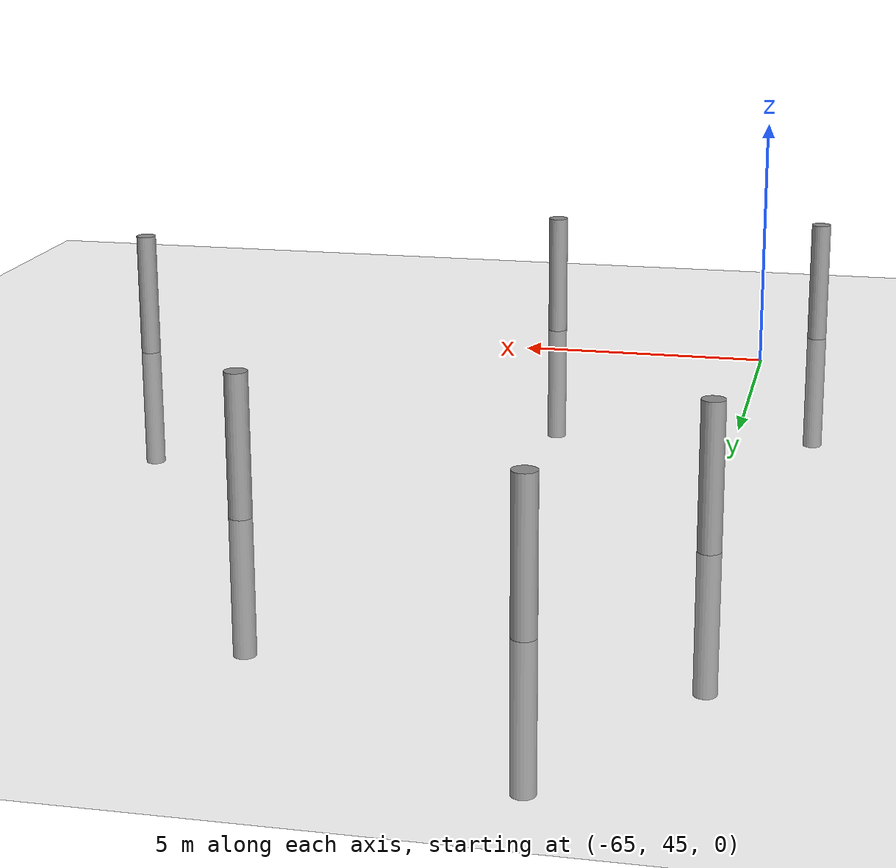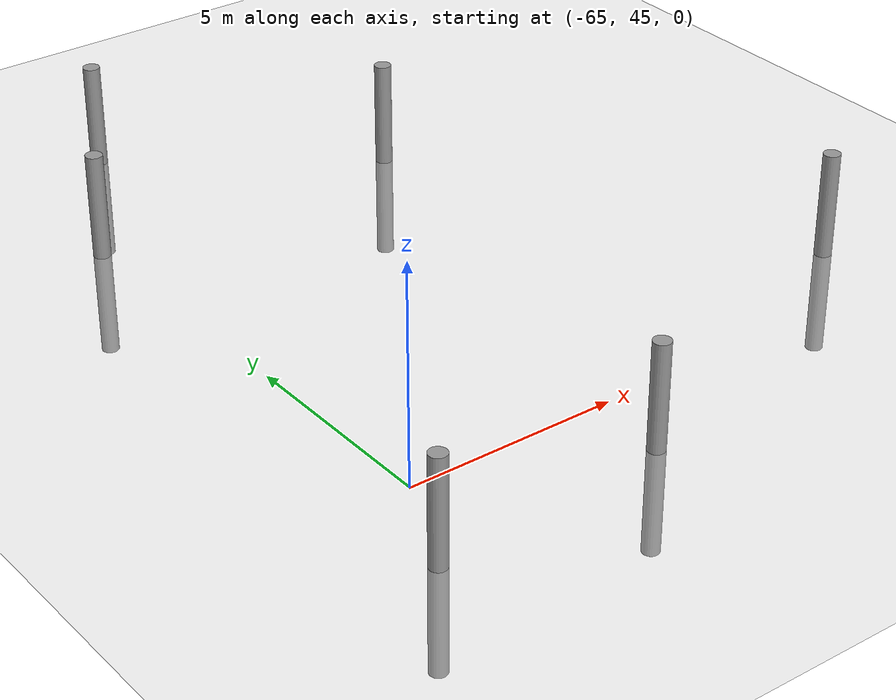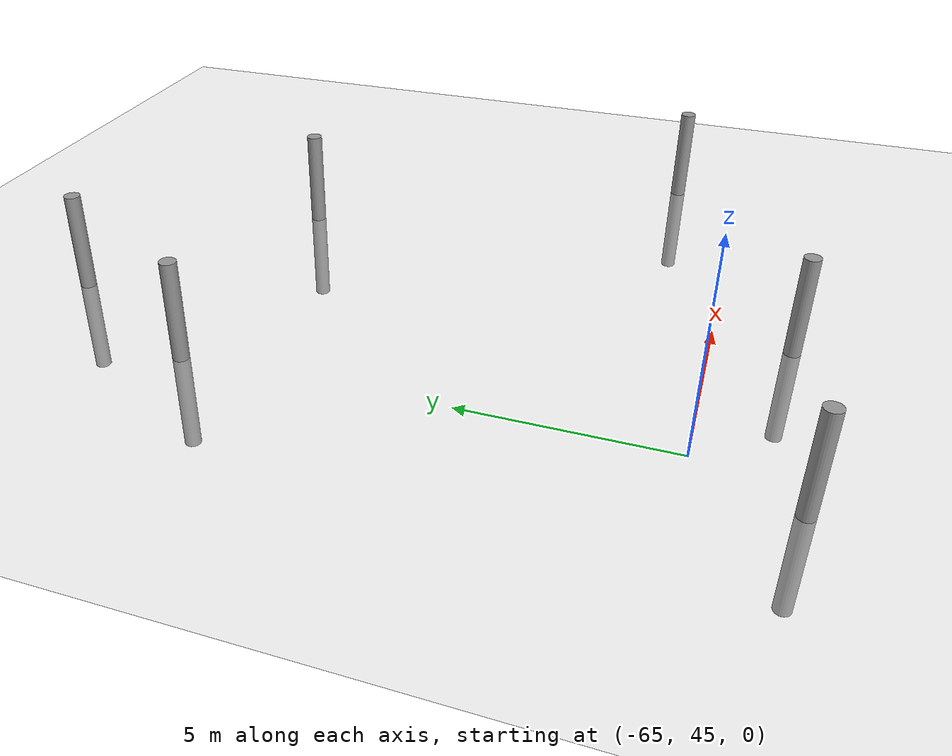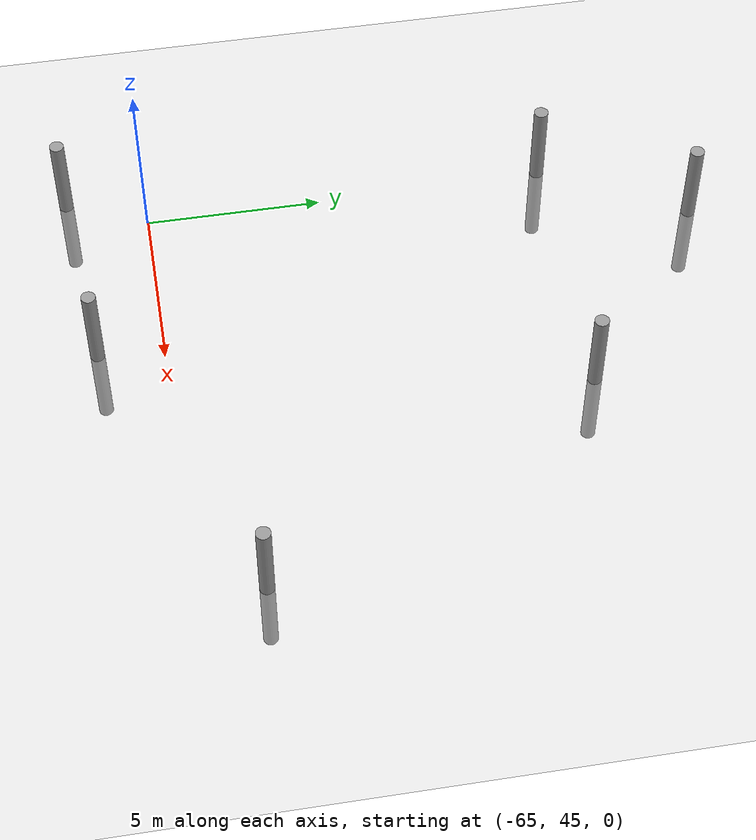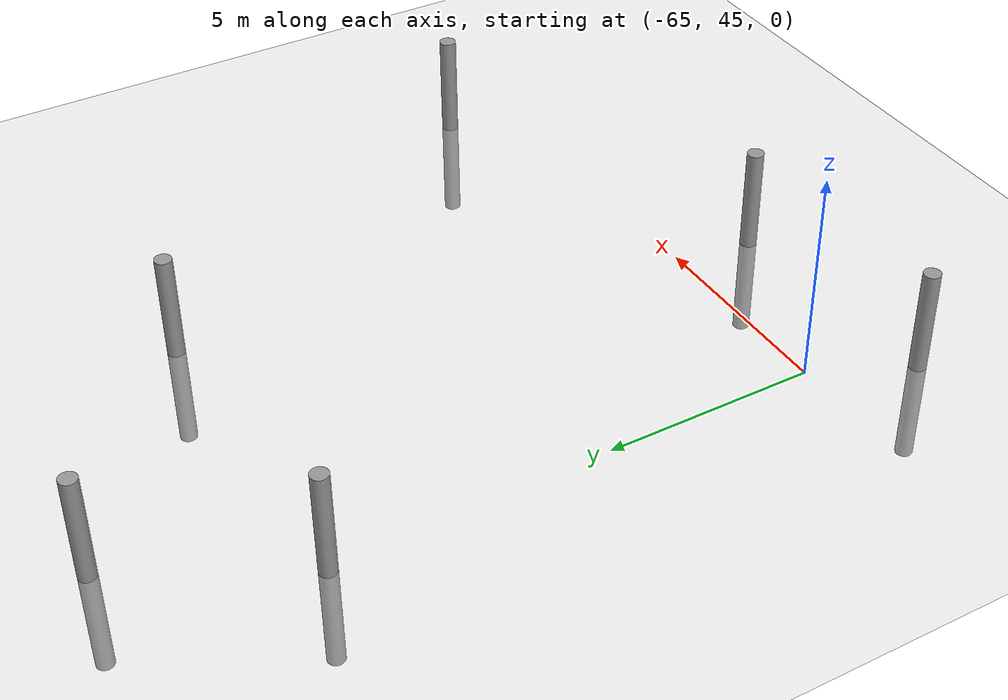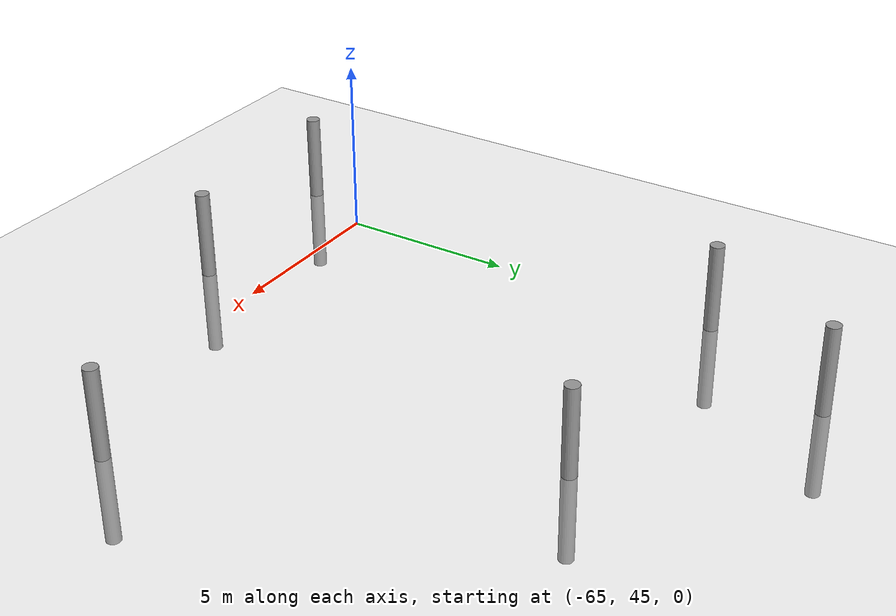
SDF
<sdf version="1.6">
 <world name="default">
  <model name="ground_plane">
   <static>1</static>
   <link name="link">
    <collision name="collision">
     <geometry><plane><normal>0 0 1</normal><size>100 100</size></plane></geometry>
     <surface><friction><ode><mu>100</mu><mu2>50</mu2></ode></friction></surface>
    </collision>
    <visual name="visual">
     <cast_shadows>0</cast_shadows>
     <geometry><plane><normal>0 0 1</normal><size>100 100</size></plane></geometry>
     <material>
      <script><uri>file://media/materials/scripts/gazebo.material</uri><name>Gazebo/Grey</name></script>
     </material>
    </visual>
   </link>
  </model>
  <model name="empty_pillars">
   <model name="empty_pillar_clone_10">
    <link name="link">
     <inertial>
      <mass>1</mass>
      <inertia><ixx>0.145833</ixx><ixy>0</ixy><ixz>0</ixz><iyy>0.145833</iyy><iyz>0</iyz><izz>0.125</izz></inertia>
     </inertial>
     <visual name="visual">
      <geometry><cylinder><radius>0.2</radius><length>5</length></cylinder></geometry>
      <material>
       <script><name>Gazebo/Grey</name><uri>file://media/materials/scripts/gazebo.material</uri></script>
       <shader type="vertex"><normal_map>__default__</normal_map></shader>
       <ambient>0.3 0.3 0.3 1</ambient>
       <diffuse>0.7 0.7 0.7 1</diffuse>
       <specular>0.01 0.01 0.01 1</specular>
       <emissive>0 0 0 1</emissive>
      </material>
     </visual>
     <collision name="collision">
      <geometry><cylinder><radius>0.05</radius><length>5</length></cylinder></geometry>
      <surface>
       <friction>
        <ode><mu>1</mu><mu2>1</mu2><fdir1>0 0 0</fdir1><slip1>0</slip1><slip2>0</slip2></ode>
        <torsional>
         <coefficient>1</coefficient>
         <patch_radius>0</patch_radius>
         <surface_radius>0</surface_radius>
         <use_patch_radius>1</use_patch_radius>
         <ode><slip>0</slip></ode>
        </torsional>
       </friction>
       <bounce><restitution_coefficient>0</restitution_coefficient><threshold>1e+06</threshold></bounce>
       <contact>
        <collide_without_contact>0</collide_without_contact>
        <collide_without_contact_bitmask>1</collide_without_contact_bitmask>
        <collide_bitmask>1</collide_bitmask>
        <ode>
         <soft_cfm>0</soft_cfm>
         <soft_erp>0.2</soft_erp>
         <kp>1e+13</kp>
         <kd>1</kd>
         <max_vel>0.01</max_vel>
         <min_depth>0</min_depth>
        </ode>
        <bullet>
         <split_impulse>1</split_impulse>
         <split_impulse_penetration_threshold>-0.01</split_impulse_penetration_threshold>
         <soft_cfm>0</soft_cfm>
         <soft_erp>0.2</soft_erp>
         <kp>1e+13</kp>
         <kd>1</kd>
        </bullet>
       </contact>
      </surface>
     </collision>
    </link>
    <static>0</static>
    <pose>13.5083 -16.8403 0 0 -0 0</pose>
   </model>
   <model name="empty_pillar_clone_34">
    <link name="link">
     <inertial>
      <mass>1</mass>
      <inertia><ixx>0.145833</ixx><ixy>0</ixy><ixz>0</ixz><iyy>0.145833</iyy><iyz>0</iyz><izz>0.125</izz></inertia>
     </inertial>
     <visual name="visual">
      <geometry><cylinder><radius>0.2</radius><length>5</length></cylinder></geometry>
      <material>
       <script><name>Gazebo/Grey</name><uri>file://media/materials/scripts/gazebo.material</uri></script>
       <shader type="vertex"><normal_map>__default__</normal_map></shader>
       <ambient>0.3 0.3 0.3 1</ambient>
       <diffuse>0.7 0.7 0.7 1</diffuse>
       <specular>0.01 0.01 0.01 1</specular>
       <emissive>0 0 0 1</emissive>
      </material>
     </visual>
     <collision name="collision">
      <geometry><cylinder><radius>0.05</radius><length>5</length></cylinder></geometry>
      <surface>
       <friction>
        <ode><mu>1</mu><mu2>1</mu2><fdir1>0 0 0</fdir1><slip1>0</slip1><slip2>0</slip2></ode>
        <torsional>
         <coefficient>1</coefficient>
         <patch_radius>0</patch_radius>
         <surface_radius>0</surface_radius>
         <use_patch_radius>1</use_patch_radius>
         <ode><slip>0</slip></ode>
        </torsional>
       </friction>
       <bounce><restitution_coefficient>0</restitution_coefficient><threshold>1e+06</threshold></bounce>
       <contact>
        <collide_without_contact>0</collide_without_contact>
        <collide_without_contact_bitmask>1</collide_without_contact_bitmask>
        <collide_bitmask>1</collide_bitmask>
        <ode>
         <soft_cfm>0</soft_cfm>
         <soft_erp>0.2</soft_erp>
         <kp>1e+13</kp>
         <kd>1</kd>
         <max_vel>0.01</max_vel>
         <min_depth>0</min_depth>
        </ode>
        <bullet>
         <split_impulse>1</split_impulse>
         <split_impulse_penetration_threshold>-0.01</split_impulse_penetration_threshold>
         <soft_cfm>0</soft_cfm>
         <soft_erp>0.2</soft_erp>
         <kp>1e+13</kp>
         <kd>1</kd>
        </bullet>
       </contact>
      </surface>
     </collision>
    </link>
    <static>0</static>
    <pose>19.0861 -20.8946 0 0 -0 0</pose>
   </model>
   <model name="empty_pillar_clone_52">
    <link name="link">
     <inertial>
      <mass>1</mass>
      <inertia><ixx>0.145833</ixx><ixy>0</ixy><ixz>0</ixz><iyy>0.145833</iyy><iyz>0</iyz><izz>0.125</izz></inertia>
     </inertial>
     <visual name="visual">
      <geometry><cylinder><radius>0.2</radius><length>5</length></cylinder></geometry>
      <material>
       <script><name>Gazebo/Grey</name><uri>file://media/materials/scripts/gazebo.material</uri></script>
       <shader type="vertex"><normal_map>__default__</normal_map></shader>
       <ambient>0.3 0.3 0.3 1</ambient>
       <diffuse>0.7 0.7 0.7 1</diffuse>
       <specular>0.01 0.01 0.01 1</specular>
       <emissive>0 0 0 1</emissive>
      </material>
     </visual>
     <collision name="collision">
      <geometry><cylinder><radius>0.05</radius><length>5</length></cylinder></geometry>
      <surface>
       <friction>
        <ode><mu>1</mu><mu2>1</mu2><fdir1>0 0 0</fdir1><slip1>0</slip1><slip2>0</slip2></ode>
        <torsional>
         <coefficient>1</coefficient>
         <patch_radius>0</patch_radius>
         <surface_radius>0</surface_radius>
         <use_patch_radius>1</use_patch_radius>
         <ode><slip>0</slip></ode>
        </torsional>
       </friction>
       <bounce><restitution_coefficient>0</restitution_coefficient><threshold>1e+06</threshold></bounce>
       <contact>
        <collide_without_contact>0</collide_without_contact>
        <collide_without_contact_bitmask>1</collide_without_contact_bitmask>
        <collide_bitmask>1</collide_bitmask>
        <ode>
         <soft_cfm>0</soft_cfm>
         <soft_erp>0.2</soft_erp>
         <kp>1e+13</kp>
         <kd>1</kd>
         <max_vel>0.01</max_vel>
         <min_depth>0</min_depth>
        </ode>
        <bullet>
         <split_impulse>1</split_impulse>
         <split_impulse_penetration_threshold>-0.01</split_impulse_penetration_threshold>
         <soft_cfm>0</soft_cfm>
         <soft_erp>0.2</soft_erp>
         <kp>1e+13</kp>
         <kd>1</kd>
        </bullet>
       </contact>
      </surface>
     </collision>
    </link>
    <static>0</static>
    <pose>11.2833 -20.8743 0 0 -0 0</pose>
   </model>
   <static>0</static>
   <pose>-76.4247 77.3975 0 0 -0 0</pose>
  </model>
  <model name="empty_pillars_6">
   <model name="empty_pillar_clone_28">
    <link name="link">
     <inertial>
      <mass>1</mass>
      <inertia><ixx>0.145833</ixx><ixy>0</ixy><ixz>0</ixz><iyy>0.145833</iyy><iyz>0</iyz><izz>0.125</izz></inertia>
     </inertial>
     <visual name="visual">
      <geometry><cylinder><radius>0.2</radius><length>5</length></cylinder></geometry>
      <material>
       <script><name>Gazebo/Grey</name><uri>file://media/materials/scripts/gazebo.material</uri></script>
       <shader type="vertex"><normal_map>__default__</normal_map></shader>
       <ambient>0.3 0.3 0.3 1</ambient>
       <diffuse>0.7 0.7 0.7 1</diffuse>
       <specular>0.01 0.01 0.01 1</specular>
       <emissive>0 0 0 1</emissive>
      </material>
     </visual>
     <collision name="collision">
      <geometry><cylinder><radius>0.05</radius><length>5</length></cylinder></geometry>
      <surface>
       <friction>
        <ode><mu>1</mu><mu2>1</mu2><fdir1>0 0 0</fdir1><slip1>0</slip1><slip2>0</slip2></ode>
        <torsional>
         <coefficient>1</coefficient>
         <patch_radius>0</patch_radius>
         <surface_radius>0</surface_radius>
         <use_patch_radius>1</use_patch_radius>
         <ode><slip>0</slip></ode>
        </torsional>
       </friction>
       <bounce><restitution_coefficient>0</restitution_coefficient><threshold>1e+06</threshold></bounce>
       <contact>
        <collide_without_contact>0</collide_without_contact>
        <collide_without_contact_bitmask>1</collide_without_contact_bitmask>
        <collide_bitmask>1</collide_bitmask>
        <ode>
         <soft_cfm>0</soft_cfm>
         <soft_erp>0.2</soft_erp>
         <kp>1e+13</kp>
         <kd>1</kd>
         <max_vel>0.01</max_vel>
         <min_depth>0</min_depth>
        </ode>
        <bullet>
         <split_impulse>1</split_impulse>
         <split_impulse_penetration_threshold>-0.01</split_impulse_penetration_threshold>
         <soft_cfm>0</soft_cfm>
         <soft_erp>0.2</soft_erp>
         <kp>1e+13</kp>
         <kd>1</kd>
        </bullet>
       </contact>
      </surface>
     </collision>
    </link>
    <static>0</static>
    <pose>15.5447 15.5867 0 0 -0 0</pose>
   </model>
   <model name="empty_pillar_clone_30">
    <link name="link">
     <inertial>
      <mass>1</mass>
      <inertia><ixx>0.145833</ixx><ixy>0</ixy><ixz>0</ixz><iyy>0.145833</iyy><iyz>0</iyz><izz>0.125</izz></inertia>
     </inertial>
     <visual name="visual">
      <geometry><cylinder><radius>0.2</radius><length>5</length></cylinder></geometry>
      <material>
       <script><name>Gazebo/Grey</name><uri>file://media/materials/scripts/gazebo.material</uri></script>
       <shader type="vertex"><normal_map>__default__</normal_map></shader>
       <ambient>0.3 0.3 0.3 1</ambient>
       <diffuse>0.7 0.7 0.7 1</diffuse>
       <specular>0.01 0.01 0.01 1</specular>
       <emissive>0 0 0 1</emissive>
      </material>
     </visual>
     <collision name="collision">
      <geometry><cylinder><radius>0.05</radius><length>5</length></cylinder></geometry>
      <surface>
       <friction>
        <ode><mu>1</mu><mu2>1</mu2><fdir1>0 0 0</fdir1><slip1>0</slip1><slip2>0</slip2></ode>
        <torsional>
         <coefficient>1</coefficient>
         <patch_radius>0</patch_radius>
         <surface_radius>0</surface_radius>
         <use_patch_radius>1</use_patch_radius>
         <ode><slip>0</slip></ode>
        </torsional>
       </friction>
       <bounce><restitution_coefficient>0</restitution_coefficient><threshold>1e+06</threshold></bounce>
       <contact>
        <collide_without_contact>0</collide_without_contact>
        <collide_without_contact_bitmask>1</collide_without_contact_bitmask>
        <collide_bitmask>1</collide_bitmask>
        <ode>
         <soft_cfm>0</soft_cfm>
         <soft_erp>0.2</soft_erp>
         <kp>1e+13</kp>
         <kd>1</kd>
         <max_vel>0.01</max_vel>
         <min_depth>0</min_depth>
        </ode>
        <bullet>
         <split_impulse>1</split_impulse>
         <split_impulse_penetration_threshold>-0.01</split_impulse_penetration_threshold>
         <soft_cfm>0</soft_cfm>
         <soft_erp>0.2</soft_erp>
         <kp>1e+13</kp>
         <kd>1</kd>
        </bullet>
       </contact>
      </surface>
     </collision>
    </link>
    <static>0</static>
    <pose>23.752 19.2231 0 0 -0 0</pose>
   </model>
   <model name="empty_pillar_clone_49">
    <link name="link">
     <inertial>
      <mass>1</mass>
      <inertia><ixx>0.145833</ixx><ixy>0</ixy><ixz>0</ixz><iyy>0.145833</iyy><iyz>0</iyz><izz>0.125</izz></inertia>
     </inertial>
     <visual name="visual">
      <geometry><cylinder><radius>0.2</radius><length>5</length></cylinder></geometry>
      <material>
       <script><name>Gazebo/Grey</name><uri>file://media/materials/scripts/gazebo.material</uri></script>
       <shader type="vertex"><normal_map>__default__</normal_map></shader>
       <ambient>0.3 0.3 0.3 1</ambient>
       <diffuse>0.7 0.7 0.7 1</diffuse>
       <specular>0.01 0.01 0.01 1</specular>
       <emissive>0 0 0 1</emissive>
      </material>
     </visual>
     <collision name="collision">
      <geometry><cylinder><radius>0.05</radius><length>5</length></cylinder></geometry>
      <surface>
       <friction>
        <ode><mu>1</mu><mu2>1</mu2><fdir1>0 0 0</fdir1><slip1>0</slip1><slip2>0</slip2></ode>
        <torsional>
         <coefficient>1</coefficient>
         <patch_radius>0</patch_radius>
         <surface_radius>0</surface_radius>
         <use_patch_radius>1</use_patch_radius>
         <ode><slip>0</slip></ode>
        </torsional>
       </friction>
       <bounce><restitution_coefficient>0</restitution_coefficient><threshold>1e+06</threshold></bounce>
       <contact>
        <collide_without_contact>0</collide_without_contact>
        <collide_without_contact_bitmask>1</collide_without_contact_bitmask>
        <collide_bitmask>1</collide_bitmask>
        <ode>
         <soft_cfm>0</soft_cfm>
         <soft_erp>0.2</soft_erp>
         <kp>1e+13</kp>
         <kd>1</kd>
         <max_vel>0.01</max_vel>
         <min_depth>0</min_depth>
        </ode>
        <bullet>
         <split_impulse>1</split_impulse>
         <split_impulse_penetration_threshold>-0.01</split_impulse_penetration_threshold>
         <soft_cfm>0</soft_cfm>
         <soft_erp>0.2</soft_erp>
         <kp>1e+13</kp>
         <kd>1</kd>
        </bullet>
       </contact>
      </surface>
     </collision>
    </link>
    <static>0</static>
    <pose>9.84768 15.1425 0 0 -0 0</pose>
   </model>
   <static>0</static>
   <pose>-75.8833 27.5686 0 0 -0 0</pose>
  </model>
 </world>
</sdf>
